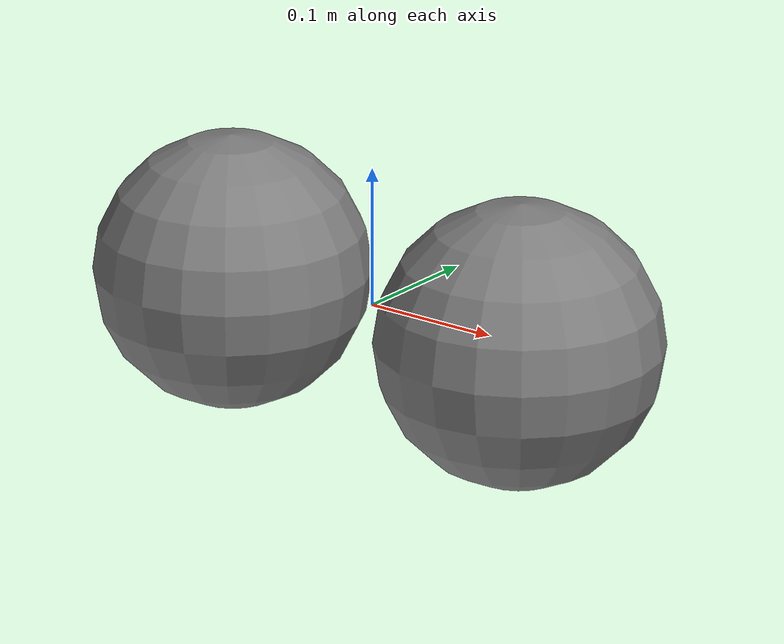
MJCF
<mujoco model="override_aabb_margin">
        <option gravity="0 0 0" timestep="0.002"/>
        <worldbody>
            <body name="a" pos="-0.125 0 0">
                <freejoint name="a_free"/>
                <geom type="sphere" size="0.1" mass="1.0" margin="0.01"/>
            </body>
            <body name="b" pos="0.125 0 0">
                <freejoint name="b_free"/>
                <geom type="sphere" size="0.1" mass="1.0" margin="0.01"/>
            </body>
        </worldbody>
    </mujoco>
